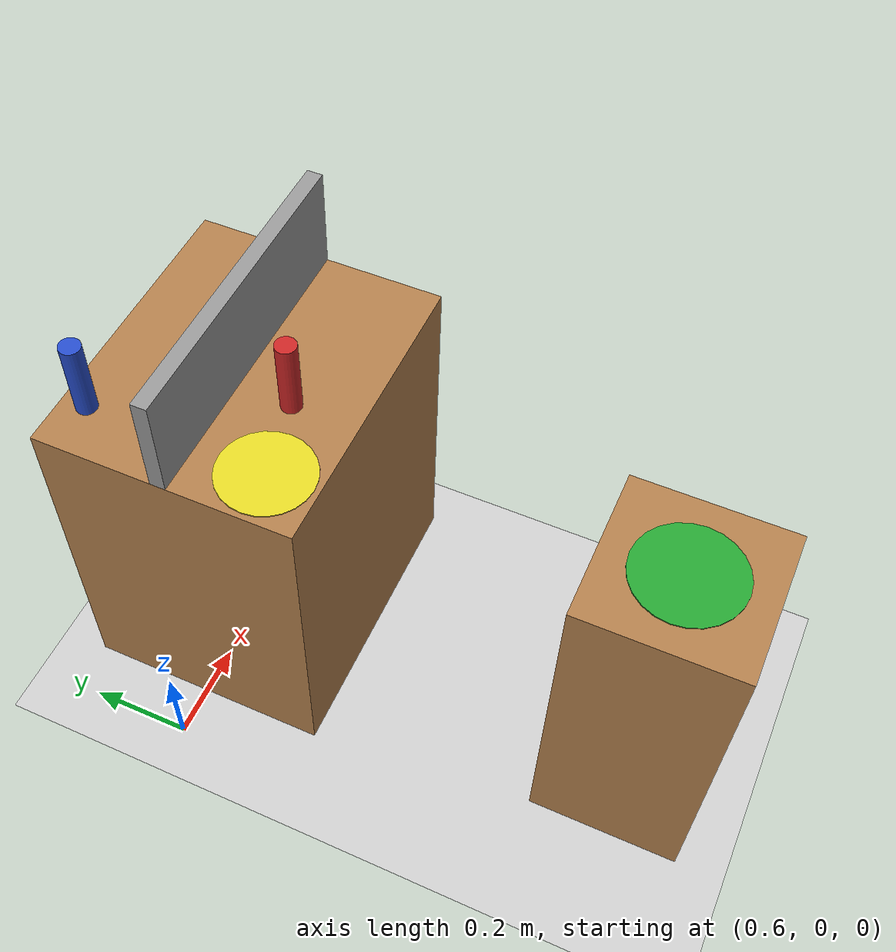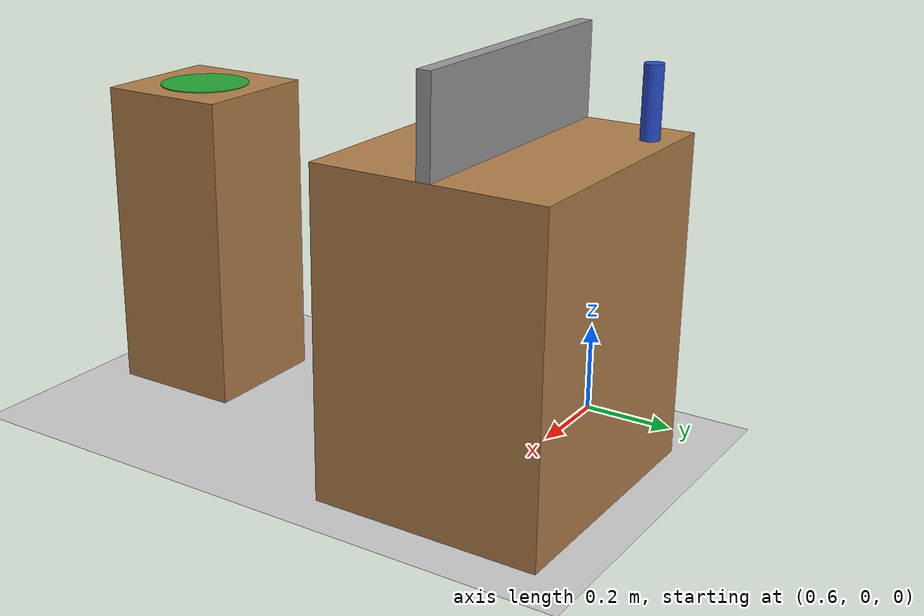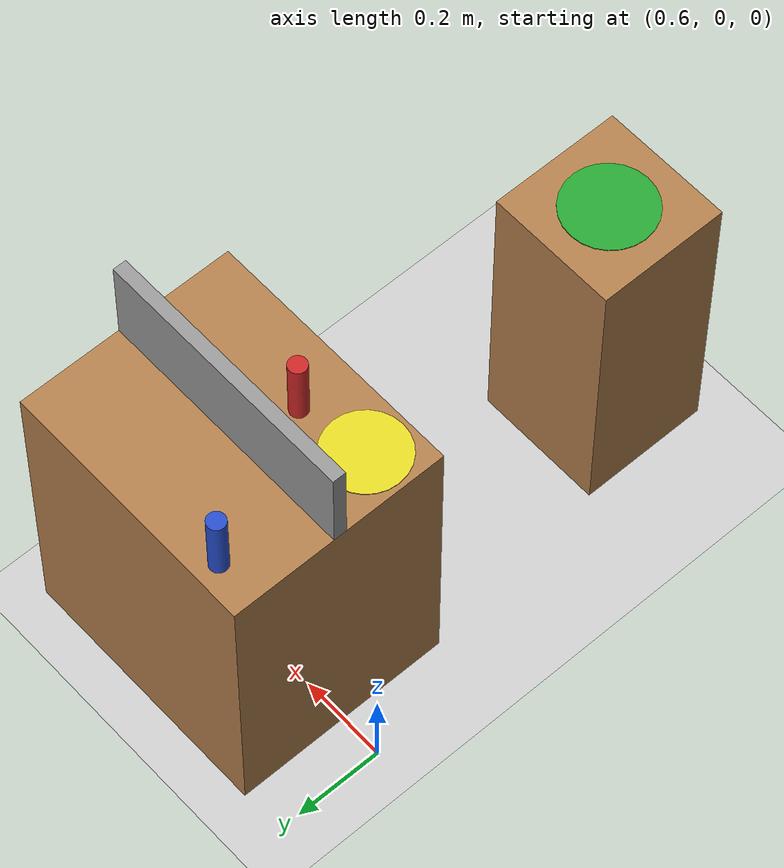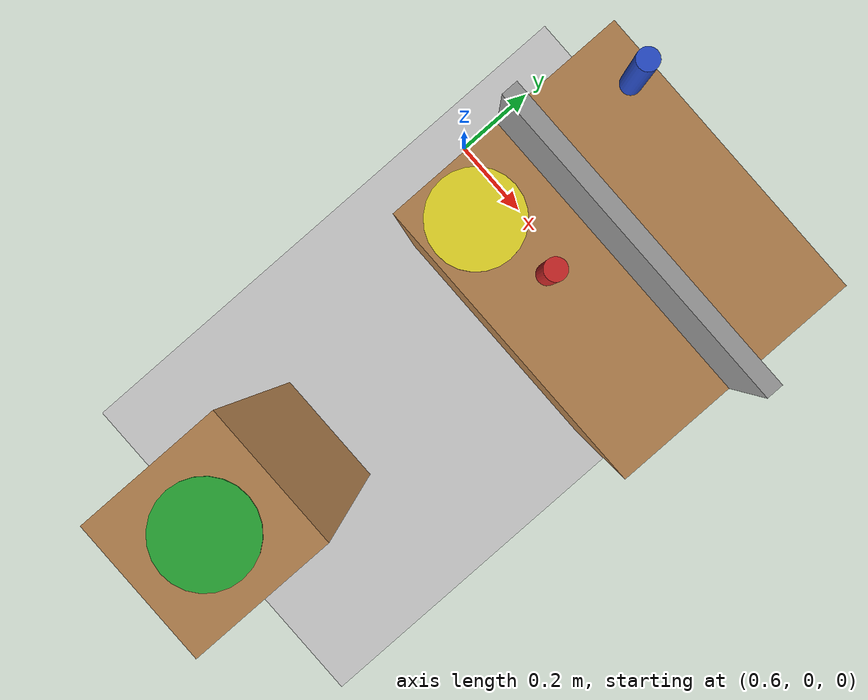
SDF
<?xml version="1.0" ?>
<sdf version="1.4">
  <world name="bimanual_manipulation_world">

    <!-- ================================================================
         PHYSICS: same tuning as the other worlds.
    ================================================================ -->
    <physics type="ode">
      <gravity>0 0 -9.81</gravity>
      <ode>
        <solver>
          <type>quick</type>
          <iters>150</iters>
          <sor>1.3</sor>
        </solver>
        <constraints>
          <cfm>0.0</cfm>
          <erp>0.5</erp>
          <contact_max_correcting_vel>2.0</contact_max_correcting_vel>
          <contact_surface_layer>0.001</contact_surface_layer>
        </constraints>
      </ode>
      <real_time_update_rate>1000</real_time_update_rate>
      <max_step_size>0.001</max_step_size>
    </physics>

    <plugin name="ros2_linkattacher" filename="libgazebo_link_attacher.so"/>

    <!-- Standard illumination and ground -->
    <include><uri>model://sun</uri></include>
    <include><uri>model://ground_plane</uri></include>

    <!-- Main work table: same pose/size/material as the other worlds. -->
    <model name="work_table">
      <static>true</static>
      <pose>1.000 0.0 0.35 0 0 0</pose>
      <link name="link">
        <collision name="col">
          <geometry><box><size>0.6 0.5 0.7</size></box></geometry>
          <surface>
            <contact>
              <ode>
                <kp>1000000</kp>
                <kd>100</kd>
                <max_vel>0.5</max_vel>
                <min_depth>0.001</min_depth>
              </ode>
            </contact>
            <friction><ode><mu>0.8</mu><mu2>0.8</mu2></ode></friction>
          </surface>
        </collision>
        <visual name="vis">
          <geometry><box><size>0.6 0.5 0.7</size></box></geometry>
          <material>
            <script>
              <uri>file://media/materials/scripts/gazebo.material</uri>
              <name>Gazebo/Wood</name>
            </script>
          </material>
        </visual>
      </link>
    </model>

    <model name="table_divider">
      <static>true</static>
      <pose>1.000 0.0 0.80 0 0 0</pose>
      <link name="link">
        <collision name="col">
          <geometry><box><size>0.6 0.03 0.20</size></box></geometry>
          <surface>
            <contact>
              <ode>
                <kp>1000000</kp>
                <kd>100</kd>
                <max_vel>0.5</max_vel>
                <min_depth>0.001</min_depth>
              </ode>
            </contact>
            <friction><ode><mu>0.8</mu><mu2>0.8</mu2></ode></friction>
          </surface>
        </collision>
        <visual name="vis">
          <geometry><box><size>0.6 0.03 0.20</size></box></geometry>
          <material><script><uri>file://media/materials/scripts/gazebo.material</uri><name>Gazebo/Grey</name></script></material>
        </visual>
      </link>
    </model>

    <!-- Side table (smaller, further right): RIGHT of the main table (y=-0.85).
         Carries the FINAL placement platform for the right hand. -->
    <model name="side_table">
      <static>true</static>
      <pose>0.900 -0.85 0.35 0 0 0</pose>
      <link name="link">
        <collision name="col">
          <geometry><box><size>0.3 0.3 0.7</size></box></geometry>
          <surface>
            <contact>
              <ode>
                <kp>1000000</kp>
                <kd>100</kd>
                <max_vel>0.5</max_vel>
                <min_depth>0.001</min_depth>
              </ode>
            </contact>
            <friction><ode><mu>0.8</mu><mu2>0.8</mu2></ode></friction>
          </surface>
        </collision>
        <visual name="vis">
          <geometry><box><size>0.3 0.3 0.7</size></box></geometry>
          <material>
            <script>
              <uri>file://media/materials/scripts/gazebo.material</uri>
              <name>Gazebo/Wood</name>
            </script>
          </material>
        </visual>
      </link>
    </model>

    <model name="placement_area">
      <static>true</static>
      <pose>0.800 -0.15 0.701 0 0 0</pose>
      <link name="link">
        <visual name="vis">
          <geometry><cylinder><radius>0.09</radius><length>0.002</length></cylinder></geometry>
          <material><script><uri>file://media/materials/scripts/gazebo.material</uri><name>Gazebo/Yellow</name></script></material>
        </visual>
      </link>
    </model>

    <model name="placement_area_final">
      <static>true</static>
      <pose>0.900 -0.85 0.701 0 0 0</pose>
      <link name="link">
        <visual name="vis">
          <geometry><cylinder><radius>0.10</radius><length>0.002</length></cylinder></geometry>
          <material><script><uri>file://media/materials/scripts/gazebo.material</uri><name>Gazebo/Green</name></script></material>
        </visual>
      </link>
    </model>

    <model name="red_cylinder">
      <static>false</static>
      <pose>0.950 -0.12 0.775 0 0 0</pose>
      <link name="link">
        <inertial>
          <pose>0 0 0 0 0 0</pose>
          <mass>0.15</mass>
          <inertia>
            <ixx>0.000309</ixx>
            <iyy>0.000309</iyy>
            <izz>0.000030</izz>
            <ixy>0</ixy><ixz>0</ixz><iyz>0</iyz>
          </inertia>
        </inertial>
        <collision name="col">
          <geometry><cylinder><radius>0.02</radius><length>0.15</length></cylinder></geometry>
          <surface>
            <contact>
              <ode>
                <soft_cfm>0.0</soft_cfm>
                <soft_erp>0.5</soft_erp>
                <kp>20000</kp>
                <kd>50</kd>
                <max_vel>1.0</max_vel>
                <min_depth>0.001</min_depth>
              </ode>
            </contact>
            <friction><ode><mu>0.6</mu><mu2>0.6</mu2></ode></friction>
          </surface>
        </collision>
        <visual name="vis">
          <geometry><cylinder><radius>0.02</radius><length>0.15</length></cylinder></geometry>
          <material><script><uri>file://media/materials/scripts/gazebo.material</uri><name>Gazebo/Red</name></script></material>
        </visual>
      </link>
    </model>

    <model name="blue_cylinder">
      <static>false</static>
      <pose>0.800 0.20 0.775 0 0 0</pose>
      <link name="link">
        <inertial>
          <pose>0 0 0 0 0 0</pose>
          <mass>0.15</mass>
          <inertia>
            <ixx>0.000309</ixx>
            <iyy>0.000309</iyy>
            <izz>0.000030</izz>
            <ixy>0</ixy><ixz>0</ixz><iyz>0</iyz>
          </inertia>
        </inertial>
        <collision name="col">
          <geometry><cylinder><radius>0.02</radius><length>0.15</length></cylinder></geometry>
          <surface>
            <contact>
              <ode>
                <soft_cfm>0.0</soft_cfm>
                <soft_erp>0.5</soft_erp>
                <kp>20000</kp>
                <kd>50</kd>
                <max_vel>1.0</max_vel>
                <min_depth>0.001</min_depth>
              </ode>
            </contact>
            <friction><ode><mu>0.6</mu><mu2>0.6</mu2></ode></friction>
          </surface>
        </collision>
        <visual name="vis">
          <geometry><cylinder><radius>0.02</radius><length>0.15</length></cylinder></geometry>
          <material><script><uri>file://media/materials/scripts/gazebo.material</uri><name>Gazebo/Blue</name></script></material>
        </visual>
      </link>
    </model>

  </world>
</sdf>
